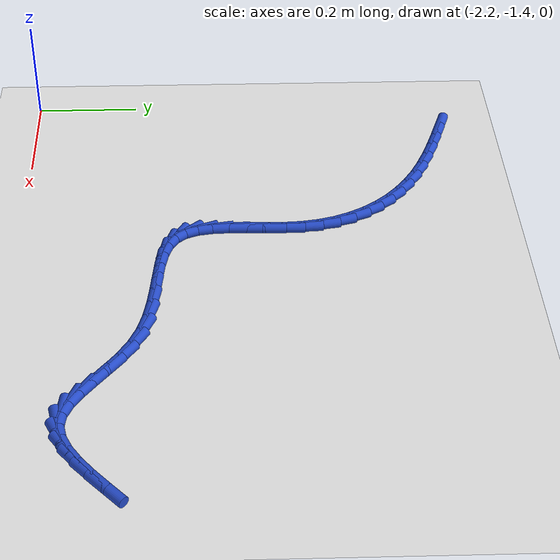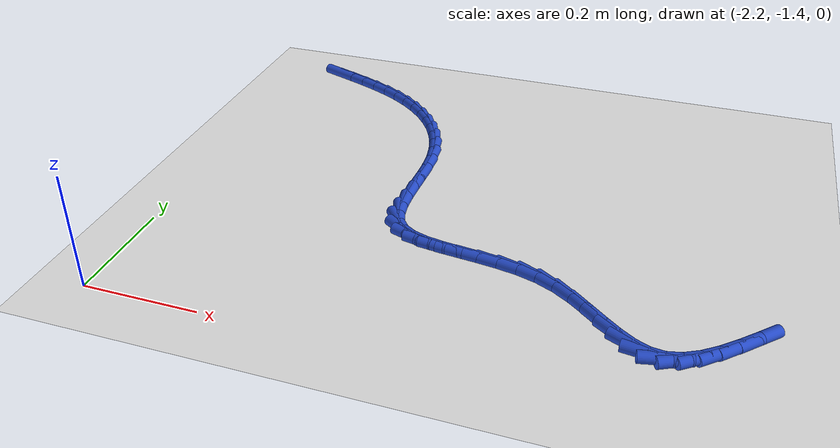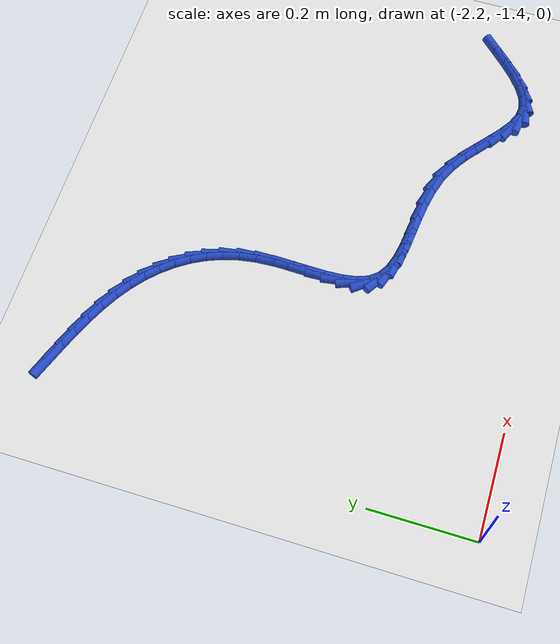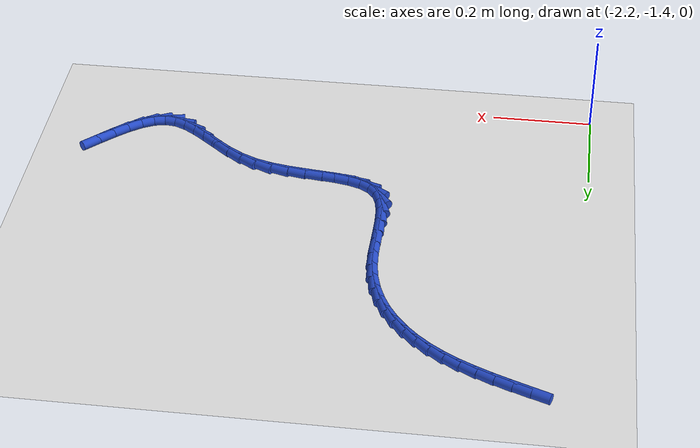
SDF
<sdf version="1.6">
 <world name="default">
  <model name="ground_plane">
   <static>1</static>
   <link name="link">
    <collision name="collision">
     <geometry><plane><normal>0 0 1</normal><size>100 100</size></plane></geometry>
     <surface><friction><ode><mu>100</mu><mu2>50</mu2></ode></friction></surface>
    </collision>
    <visual name="visual">
     <cast_shadows>0</cast_shadows>
     <geometry><plane><normal>0 0 1</normal><size>100 100</size></plane></geometry>
     <material>
      <script><uri>file://media/materials/scripts/gazebo.material</uri><name>Gazebo/WhiteGlow</name></script>
     </material>
    </visual>
   </link>
  </model>
  <model name="line">
   <link name="link_153">
    <pose>-2.107481818918037 -0.5724362868138801 0.01 0 1.57 -0.35752339098056923</pose>
    <collision name="collision">
     <geometry><cylinder><radius>0.01</radius><length>0.08</length></cylinder></geometry>
    </collision>
    <visual name="visual">
     <material>
      <script><name>Gazebo/Blue</name><uri>file://media/materials/scripts/gazebo.material</uri></script>
     </material>
     <geometry><cylinder><radius>0.01</radius><length>0.08</length></cylinder></geometry>
    </visual>
   </link>
   <link name="link_154">
    <pose>-2.075129539330398 -0.5845223862789888 0.01 0 1.57 -0.3758690085922539</pose>
    <collision name="collision">
     <geometry><cylinder><radius>0.01</radius><length>0.08</length></cylinder></geometry>
    </collision>
    <visual name="visual">
     <material>
      <script><name>Gazebo/Blue</name><uri>file://media/materials/scripts/gazebo.material</uri></script>
     </material>
     <geometry><cylinder><radius>0.01</radius><length>0.08</length></cylinder></geometry>
    </visual>
   </link>
   <link name="link_155">
    <pose>-2.0427505499191785 -0.5973001254568249 0.01 0 1.57 -0.4075363198862445</pose>
    <collision name="collision">
     <geometry><cylinder><radius>0.01</radius><length>0.08</length></cylinder></geometry>
    </collision>
    <visual name="visual">
     <material>
      <script><name>Gazebo/Blue</name><uri>file://media/materials/scripts/gazebo.material</uri></script>
     </material>
     <geometry><cylinder><radius>0.01</radius><length>0.08</length></cylinder></geometry>
    </visual>
   </link>
   <link name="link_156">
    <pose>-2.010886428147695 -0.6110560341735766 0.01 0 1.57 -0.4536466259549948</pose>
    <collision name="collision">
     <geometry><cylinder><radius>0.01</radius><length>0.08</length></cylinder></geometry>
    </collision>
    <visual name="visual">
     <material>
      <script><name>Gazebo/Blue</name><uri>file://media/materials/scripts/gazebo.material</uri></script>
     </material>
     <geometry><cylinder><radius>0.01</radius><length>0.08</length></cylinder></geometry>
    </visual>
   </link>
   <link name="link_157">
    <pose>-1.9800787514792626 -0.62607664225543 0.01 0 1.57 -0.5160593639935802</pose>
    <collision name="collision">
     <geometry><cylinder><radius>0.01</radius><length>0.08</length></cylinder></geometry>
    </collision>
    <visual name="visual">
     <material>
      <script><name>Gazebo/Blue</name><uri>file://media/materials/scripts/gazebo.material</uri></script>
     </material>
     <geometry><cylinder><radius>0.01</radius><length>0.08</length></cylinder></geometry>
    </visual>
   </link>
   <link name="link_158">
    <pose>-1.950869097377196 -0.6426484795285734 0.01 0 1.57 -0.595467451029998</pose>
    <collision name="collision">
     <geometry><cylinder><radius>0.01</radius><length>0.08</length></cylinder></geometry>
    </collision>
    <visual name="visual">
     <material>
      <script><name>Gazebo/Blue</name><uri>file://media/materials/scripts/gazebo.material</uri></script>
     </material>
     <geometry><cylinder><radius>0.01</radius><length>0.08</length></cylinder></geometry>
    </visual>
   </link>
   <link name="link_159">
    <pose>-1.9237497449115661 -0.6610219318071068 0.01 0 1.57 -0.6840122032152587</pose>
    <collision name="collision">
     <geometry><cylinder><radius>0.01</radius><length>0.08</length></cylinder></geometry>
    </collision>
    <visual name="visual">
     <material>
      <script><name>Gazebo/Blue</name><uri>file://media/materials/scripts/gazebo.material</uri></script>
     </material>
     <geometry><cylinder><radius>0.01</radius><length>0.08</length></cylinder></geometry>
    </visual>
   </link>
   <link name="link_160">
    <pose>-1.898941638205105 -0.6812484507620296 0.01 0 1.57 -0.7785155806630718</pose>
    <collision name="collision">
     <geometry><cylinder><radius>0.01</radius><length>0.08</length></cylinder></geometry>
    </collision>
    <visual name="visual">
     <material>
      <script><name>Gazebo/Blue</name><uri>file://media/materials/scripts/gazebo.material</uri></script>
     </material>
     <geometry><cylinder><radius>0.01</radius><length>0.08</length></cylinder></geometry>
    </visual>
   </link>
   <link name="link_161">
    <pose>-1.876572868089873 -0.7033114109884061 0.01 0 1.57 -0.8785550688870966</pose>
    <collision name="collision">
     <geometry><cylinder><radius>0.01</radius><length>0.08</length></cylinder></geometry>
    </collision>
    <visual name="visual">
     <material>
      <script><name>Gazebo/Blue</name><uri>file://media/materials/scripts/gazebo.material</uri></script>
     </material>
     <geometry><cylinder><radius>0.01</radius><length>0.08</length></cylinder></geometry>
    </visual>
   </link>
   <link name="link_162">
    <pose>-1.8567714439785523 -0.727194127387205 0.01 0 1.57 -0.9832733592320357</pose>
    <collision name="collision">
     <geometry><cylinder><radius>0.01</radius><length>0.08</length></cylinder></geometry>
    </collision>
    <visual name="visual">
     <material>
      <script><name>Gazebo/Blue</name><uri>file://media/materials/scripts/gazebo.material</uri></script>
     </material>
     <geometry><cylinder><radius>0.01</radius><length>0.08</length></cylinder></geometry>
    </visual>
   </link>
   <link name="link_163">
    <pose>-1.8396653752838255 -0.7528799148593952 0.01 0 1.57 -1.0913580202808189</pose>
    <collision name="collision">
     <geometry><cylinder><radius>0.01</radius><length>0.08</length></cylinder></geometry>
    </collision>
    <visual name="visual">
     <material>
      <script><name>Gazebo/Blue</name><uri>file://media/materials/scripts/gazebo.material</uri></script>
     </material>
     <geometry><cylinder><radius>0.01</radius><length>0.08</length></cylinder></geometry>
    </visual>
   </link>
   <link name="link_164">
    <pose>-1.8253826714183738 -0.7803520883059452 0.01 0 1.57 -1.201108965883276</pose>
    <collision name="collision">
     <geometry><cylinder><radius>0.01</radius><length>0.08</length></cylinder></geometry>
    </collision>
    <visual name="visual">
     <material>
      <script><name>Gazebo/Blue</name><uri>file://media/materials/scripts/gazebo.material</uri></script>
     </material>
     <geometry><cylinder><radius>0.01</radius><length>0.08</length></cylinder></geometry>
    </visual>
   </link>
   <link name="link_165">
    <pose>-1.8140513417948805 -0.8095939626278252 0.01 0 1.57 -1.3105963417959403</pose>
    <collision name="collision">
     <geometry><cylinder><radius>0.01</radius><length>0.08</length></cylinder></geometry>
    </collision>
    <visual name="visual">
     <material>
      <script><name>Gazebo/Blue</name><uri>file://media/materials/scripts/gazebo.material</uri></script>
     </material>
     <geometry><cylinder><radius>0.01</radius><length>0.08</length></cylinder></geometry>
    </visual>
   </link>
   <link name="link_166">
    <pose>-1.8057993958260274 -0.8405888527260017 0.01 0 1.57 -1.4178789829892622</pose>
    <collision name="collision">
     <geometry><cylinder><radius>0.01</radius><length>0.08</length></cylinder></geometry>
    </collision>
    <visual name="visual">
     <material>
      <script><name>Gazebo/Blue</name><uri>file://media/materials/scripts/gazebo.material</uri></script>
     </material>
     <geometry><cylinder><radius>0.01</radius><length>0.08</length></cylinder></geometry>
    </visual>
   </link>
   <link name="link_167">
    <pose>-1.8007548429244968 -0.8733200735014448 0.01 0 1.57 -1.5143202183566173</pose>
    <collision name="collision">
     <geometry><cylinder><radius>0.01</radius><length>0.08</length></cylinder></geometry>
    </collision>
    <visual name="visual">
     <material>
      <script><name>Gazebo/Blue</name><uri>file://media/materials/scripts/gazebo.material</uri></script>
     </material>
     <geometry><cylinder><radius>0.01</radius><length>0.08</length></cylinder></geometry>
    </visual>
   </link>
   <link name="link_168">
    <pose>-1.7988163435959736 -0.9076078097316365 0.01 0 1.57 1.5670951027110458</pose>
    <collision name="collision">
     <geometry><cylinder><radius>0.01</radius><length>0.08</length></cylinder></geometry>
    </collision>
    <visual name="visual">
     <material>
      <script><name>Gazebo/Blue</name><uri>file://media/materials/scripts/gazebo.material</uri></script>
     </material>
     <geometry><cylinder><radius>0.01</radius><length>0.08</length></cylinder></geometry>
    </visual>
   </link>
   <link name="link_169">
    <pose>-1.7989458803716183 -0.9426060106507929 0.01 0 1.57 1.5442705049552543</pose>
    <collision name="collision">
     <geometry><cylinder><radius>0.01</radius><length>0.08</length></cylinder></geometry>
    </collision>
    <visual name="visual">
     <material>
      <script><name>Gazebo/Blue</name><uri>file://media/materials/scripts/gazebo.material</uri></script>
     </material>
     <geometry><cylinder><radius>0.01</radius><length>0.08</length></cylinder></geometry>
    </visual>
   </link>
   <link name="link_170">
    <pose>-1.7998663448118233 -0.9772985660840982 0.01 0 1.57 1.557783181279577</pose>
    <collision name="collision">
     <geometry><cylinder><radius>0.01</radius><length>0.08</length></cylinder></geometry>
    </collision>
    <visual name="visual">
     <material>
      <script><name>Gazebo/Blue</name><uri>file://media/materials/scripts/gazebo.material</uri></script>
     </material>
     <geometry><cylinder><radius>0.01</radius><length>0.08</length></cylinder></geometry>
    </visual>
   </link>
   <link name="link_171">
    <pose>-1.8003006283989256 -1.0106693658012185 0.01 0 1.57 -1.5279968220979132</pose>
    <collision name="collision">
     <geometry><cylinder><radius>0.01</radius><length>0.08</length></cylinder></geometry>
    </collision>
    <visual name="visual">
     <material>
      <script><name>Gazebo/Blue</name><uri>file://media/materials/scripts/gazebo.material</uri></script>
     </material>
     <geometry><cylinder><radius>0.01</radius><length>0.08</length></cylinder></geometry>
    </visual>
   </link>
   <link name="link_172">
    <pose>-1.7989716226152639 -1.0417022995718206 0.01 0 1.57 -1.4142282211073254</pose>
    <collision name="collision">
     <geometry><cylinder><radius>0.01</radius><length>0.08</length></cylinder></geometry>
    </collision>
    <visual name="visual">
     <material>
      <script><name>Gazebo/Blue</name><uri>file://media/materials/scripts/gazebo.material</uri></script>
     </material>
     <geometry><cylinder><radius>0.01</radius><length>0.08</length></cylinder></geometry>
    </visual>
   </link>
   <link name="link_173">
    <pose>-1.7946022189431756 -1.0693812571655696 0.01 0 1.57 -1.2140551530306178</pose>
    <collision name="collision">
     <geometry><cylinder><radius>0.01</radius><length>0.08</length></cylinder></geometry>
    </collision>
    <visual name="visual">
     <material>
      <script><name>Gazebo/Blue</name><uri>file://media/materials/scripts/gazebo.material</uri></script>
     </material>
     <geometry><cylinder><radius>0.01</radius><length>0.08</length></cylinder></geometry>
    </visual>
   </link>
   <link name="link_174">
    <pose>-1.7859153088649986 -1.0926901283521324 0.01 0 1.57 -0.9000298182450387</pose>
    <collision name="collision">
     <geometry><cylinder><radius>0.01</radius><length>0.08</length></cylinder></geometry>
    </collision>
    <visual name="visual">
     <material>
      <script><name>Gazebo/Blue</name><uri>file://media/materials/scripts/gazebo.material</uri></script>
     </material>
     <geometry><cylinder><radius>0.01</radius><length>0.08</length></cylinder></geometry>
    </visual>
   </link>
   <link name="link_175">
    <pose>-1.7716671169781133 -1.1106462040119316 0.01 0 1.57 -0.5621713646527491</pose>
    <collision name="collision">
     <geometry><cylinder><radius>0.01</radius><length>0.08</length></cylinder></geometry>
    </collision>
    <visual name="visual">
     <material>
      <script><name>Gazebo/Blue</name><uri>file://media/materials/scripts/gazebo.material</uri></script>
     </material>
     <geometry><cylinder><radius>0.01</radius><length>0.08</length></cylinder></geometry>
    </visual>
   </link>
   <link name="link_176">
    <pose>-1.7516203048345609 -1.1232752649954538 0.01 0 1.57 -0.3283775736339876</pose>
    <collision name="collision">
     <geometry><cylinder><radius>0.01</radius><length>0.08</length></cylinder></geometry>
    </collision>
    <visual name="visual">
     <material>
      <script><name>Gazebo/Blue</name><uri>file://media/materials/scripts/gazebo.material</uri></script>
     </material>
     <geometry><cylinder><radius>0.01</radius><length>0.08</length></cylinder></geometry>
    </visual>
   </link>
   <link name="link_177">
    <pose>-1.7266985178180743 -1.1317664442581017 0.01 0 1.57 -0.1922257918711906</pose>
    <collision name="collision">
     <geometry><cylinder><radius>0.01</radius><length>0.08</length></cylinder></geometry>
    </collision>
    <visual name="visual">
     <material>
      <script><name>Gazebo/Blue</name><uri>file://media/materials/scripts/gazebo.material</uri></script>
     </material>
     <geometry><cylinder><radius>0.01</radius><length>0.08</length></cylinder></geometry>
    </visual>
   </link>
   <link name="link_178">
    <pose>-1.6978898416648038 -1.1373734465585879 0.01 0 1.57 -0.12476161888331487</pose>
    <collision name="collision">
     <geometry><cylinder><radius>0.01</radius><length>0.08</length></cylinder></geometry>
    </collision>
    <visual name="visual">
     <material>
      <script><name>Gazebo/Blue</name><uri>file://media/materials/scripts/gazebo.material</uri></script>
     </material>
     <geometry><cylinder><radius>0.01</radius><length>0.08</length></cylinder></geometry>
    </visual>
   </link>
   <link name="link_179">
    <pose>-1.6661823621108993 -1.141349976655624 0.01 0 1.57 -0.10667135501014409</pose>
    <collision name="collision">
     <geometry><cylinder><radius>0.01</radius><length>0.08</length></cylinder></geometry>
    </collision>
    <visual name="visual">
     <material>
      <script><name>Gazebo/Blue</name><uri>file://media/materials/scripts/gazebo.material</uri></script>
     </material>
     <geometry><cylinder><radius>0.01</radius><length>0.08</length></cylinder></geometry>
    </visual>
   </link>
   <link name="link_180">
    <pose>-1.632564164892511 -1.1449497393079224 0.01 0 1.57 -0.12888756847737184</pose>
    <collision name="collision">
     <geometry><cylinder><radius>0.01</radius><length>0.08</length></cylinder></geometry>
    </collision>
    <visual name="visual">
     <material>
      <script><name>Gazebo/Blue</name><uri>file://media/materials/scripts/gazebo.material</uri></script>
     </material>
     <geometry><cylinder><radius>0.01</radius><length>0.08</length></cylinder></geometry>
    </visual>
   </link>
   <link name="link_181">
    <pose>-1.5980233357457883 -1.1494264392741953 0.01 0 1.57 -0.1893577888545614</pose>
    <collision name="collision">
     <geometry><cylinder><radius>0.01</radius><length>0.08</length></cylinder></geometry>
    </collision>
    <visual name="visual">
     <material>
      <script><name>Gazebo/Blue</name><uri>file://media/materials/scripts/gazebo.material</uri></script>
     </material>
     <geometry><cylinder><radius>0.01</radius><length>0.08</length></cylinder></geometry>
    </visual>
   </link>
   <link name="link_182">
    <pose>-1.5635479604068823 -1.1560337813131547 0.01 0 1.57 -0.2904995598018787</pose>
    <collision name="collision">
     <geometry><cylinder><radius>0.01</radius><length>0.08</length></cylinder></geometry>
    </collision>
    <visual name="visual">
     <material>
      <script><name>Gazebo/Blue</name><uri>file://media/materials/scripts/gazebo.material</uri></script>
     </material>
     <geometry><cylinder><radius>0.01</radius><length>0.08</length></cylinder></geometry>
    </visual>
   </link>
   <link name="link_183">
    <pose>-1.530126124611943 -1.1660254701835129 0.01 0 1.57 -0.4342227703058992</pose>
    <collision name="collision">
     <geometry><cylinder><radius>0.01</radius><length>0.08</length></cylinder></geometry>
    </collision>
    <visual name="visual">
     <material>
      <script><name>Gazebo/Blue</name><uri>file://media/materials/scripts/gazebo.material</uri></script>
     </material>
     <geometry><cylinder><radius>0.01</radius><length>0.08</length></cylinder></geometry>
    </visual>
   </link>
   <link name="link_184">
    <pose>-1.4987181025802454 -1.1805906869572782 0.01 0 1.57 -0.5734203984096328</pose>
    <collision name="collision">
     <geometry><cylinder><radius>0.01</radius><length>0.08</length></cylinder></geometry>
    </collision>
    <visual name="visual">
     <material>
      <script><name>Gazebo/Blue</name><uri>file://media/materials/scripts/gazebo.material</uri></script>
     </material>
     <geometry><cylinder><radius>0.01</radius><length>0.08</length></cylinder></geometry>
    </visual>
   </link>
   <link name="link_185">
    <pose>-1.4696215722281696 -1.1993813662322335 0.01 0 1.57 -0.6604450734015439</pose>
    <collision name="collision">
     <geometry><cylinder><radius>0.01</radius><length>0.08</length></cylinder></geometry>
    </collision>
    <visual name="visual">
     <material>
      <script><name>Gazebo/Blue</name><uri>file://media/materials/scripts/gazebo.material</uri></script>
     </material>
     <geometry><cylinder><radius>0.01</radius><length>0.08</length></cylinder></geometry>
    </visual>
   </link>
   <link name="link_186">
    <pose>-1.4424586194184317 -1.2204820455380316 0.01 0 1.57 -0.6961158298747783</pose>
    <collision name="collision">
     <geometry><cylinder><radius>0.01</radius><length>0.08</length></cylinder></geometry>
    </collision>
    <visual name="visual">
     <material>
      <script><name>Gazebo/Blue</name><uri>file://media/materials/scripts/gazebo.material</uri></script>
     </material>
     <geometry><cylinder><radius>0.01</radius><length>0.08</length></cylinder></geometry>
    </visual>
   </link>
   <link name="link_187">
    <pose>-1.4168209190393175 -1.241906707885661 0.01 0 1.57 -0.6783612284575363</pose>
    <collision name="collision">
     <geometry><cylinder><radius>0.01</radius><length>0.08</length></cylinder></geometry>
    </collision>
    <visual name="visual">
     <material>
      <script><name>Gazebo/Blue</name><uri>file://media/materials/scripts/gazebo.material</uri></script>
     </material>
     <geometry><cylinder><radius>0.01</radius><length>0.08</length></cylinder></geometry>
    </visual>
   </link>
   <link name="link_188">
    <pose>-1.3923001459791124 -1.2616693362861102 0.01 0 1.57 -0.5949420190417914</pose>
    <collision name="collision">
     <geometry><cylinder><radius>0.01</radius><length>0.08</length></cylinder></geometry>
    </collision>
    <visual name="visual">
     <material>
      <script><name>Gazebo/Blue</name><uri>file://media/materials/scripts/gazebo.material</uri></script>
     </material>
     <geometry><cylinder><radius>0.01</radius><length>0.08</length></cylinder></geometry>
    </visual>
   </link>
   <link name="link_189">
    <pose>-1.368487975126105 -1.277783913750367 0.01 0 1.57 -0.41931694865465113</pose>
    <collision name="collision">
     <geometry><cylinder><radius>0.01</radius><length>0.08</length></cylinder></geometry>
    </collision>
    <visual name="visual">
     <material>
      <script><name>Gazebo/Blue</name><uri>file://media/materials/scripts/gazebo.material</uri></script>
     </material>
     <geometry><cylinder><radius>0.01</radius><length>0.08</length></cylinder></geometry>
    </visual>
   </link>
   <link name="link_190">
    <pose>-1.3449760813685798 -1.2882644232894196 0.01 0 1.57 -0.12118445222128844</pose>
    <collision name="collision">
     <geometry><cylinder><radius>0.01</radius><length>0.08</length></cylinder></geometry>
    </collision>
    <visual name="visual">
     <material>
      <script><name>Gazebo/Blue</name><uri>file://media/materials/scripts/gazebo.material</uri></script>
     </material>
     <geometry><cylinder><radius>0.01</radius><length>0.08</length></cylinder></geometry>
    </visual>
   </link>
   <link name="link_191">
    <pose>-1.3213581019894884 -1.2911406487544876 0.01 0 1.57 0.2247938052396861</pose>
    <collision name="collision">
     <geometry><cylinder><radius>0.01</radius><length>0.08</length></cylinder></geometry>
    </collision>
    <visual name="visual">
     <material>
      <script><name>Gazebo/Blue</name><uri>file://media/materials/scripts/gazebo.material</uri></script>
     </material>
     <geometry><cylinder><radius>0.01</radius><length>0.08</length></cylinder></geometry>
    </visual>
   </link>
   <link name="link_192">
    <pose>-1.2973785916174758 -1.2856575326543211 0.01 0 1.57 0.4757759198491356</pose>
    <collision name="collision">
     <geometry><cylinder><radius>0.01</radius><length>0.08</length></cylinder></geometry>
    </collision>
    <visual name="visual">
     <material>
      <script><name>Gazebo/Blue</name><uri>file://media/materials/scripts/gazebo.material</uri></script>
     </material>
     <geometry><cylinder><radius>0.01</radius><length>0.08</length></cylinder></geometry>
    </visual>
   </link>
   <link name="link_193">
    <pose>-1.2730374050946736 -1.2731156477717747 0.01 0 1.57 0.6328550285366618</pose>
    <collision name="collision">
     <geometry><cylinder><radius>0.01</radius><length>0.08</length></cylinder></geometry>
    </collision>
    <visual name="visual">
     <material>
      <script><name>Gazebo/Blue</name><uri>file://media/materials/scripts/gazebo.material</uri></script>
     </material>
     <geometry><cylinder><radius>0.01</radius><length>0.08</length></cylinder></geometry>
    </visual>
   </link>
   <link name="link_194">
    <pose>-1.2483590624134404 -1.2550141661341903 0.01 0 1.57 0.7254721347584446</pose>
    <collision name="collision">
     <geometry><cylinder><radius>0.01</radius><length>0.08</length></cylinder></geometry>
    </collision>
    <visual name="visual">
     <material>
      <script><name>Gazebo/Blue</name><uri>file://media/materials/scripts/gazebo.material</uri></script>
     </material>
     <geometry><cylinder><radius>0.01</radius><length>0.08</length></cylinder></geometry>
    </visual>
   </link>
   <link name="link_195">
    <pose>-1.2233680835661334 -1.2328522597689089 0.01 0 1.57 0.7742804036095838</pose>
    <collision name="collision">
     <geometry><cylinder><radius>0.01</radius><length>0.08</length></cylinder></geometry>
    </collision>
    <visual name="visual">
     <material>
      <script><name>Gazebo/Blue</name><uri>file://media/materials/scripts/gazebo.material</uri></script>
     </material>
     <geometry><cylinder><radius>0.01</radius><length>0.08</length></cylinder></geometry>
    </visual>
   </link>
   <link name="link_196">
    <pose>-1.1980889885451091 -1.2081291007032713 0.01 0 1.57 0.7901235970253517</pose>
    <collision name="collision">
     <geometry><cylinder><radius>0.01</radius><length>0.08</length></cylinder></geometry>
    </collision>
    <visual name="visual">
     <material>
      <script><name>Gazebo/Blue</name><uri>file://media/materials/scripts/gazebo.material</uri></script>
     </material>
     <geometry><cylinder><radius>0.01</radius><length>0.08</length></cylinder></geometry>
    </visual>
   </link>
  </model>
 </world>
</sdf>
